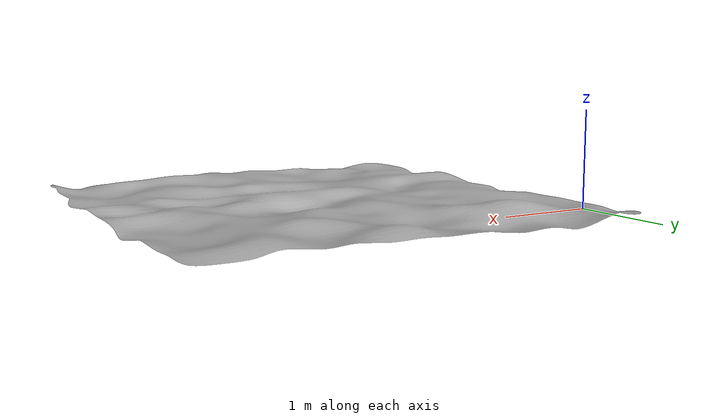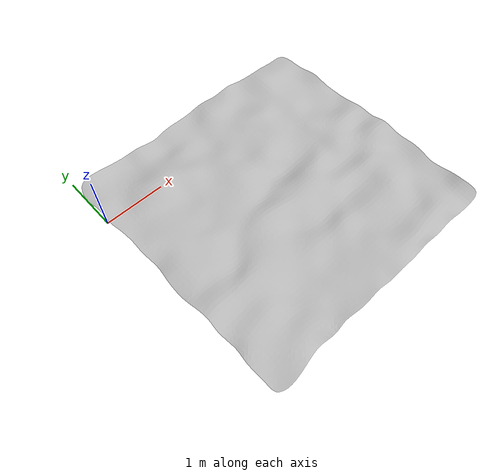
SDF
<?xml version="1.0" ?>
<sdf version="1.6">
  <model name="gymbox">
    <static>1</static>
    <link name="link">
      <inertial>
        <mass>1.0</mass>
        <inertia>
          <ixx>0.001</ixx>
          <ixy>0.0</ixy>
          <ixz>0.0</ixz>
          <iyy>0.001</iyy>
          <iyz>0.0</iyz>
          <izz>0.001</izz>
        </inertia>
      </inertial>
      <collision name="collision">
        <geometry>
          <mesh>
            <uri>model://gymbox/meshes/model.dae</uri>
            <scale>1 1 1</scale>
          </mesh>
        </geometry>
        <surface>
          <friction>
            <ode>
              <mu>0.6</mu>
              <mu2>0.6</mu2>
            </ode>
          </friction>
        </surface>
      </collision>
      <visual name="visual">
        <geometry>
          <mesh>
            <uri>model://gymbox/meshes/model.dae</uri>
            <scale>1 1 1</scale>
          </mesh>
        </geometry>
      </visual>
    </link>
  </model>
</sdf>
